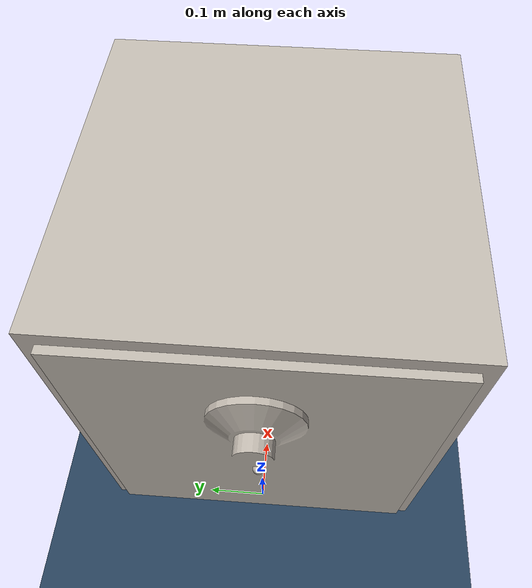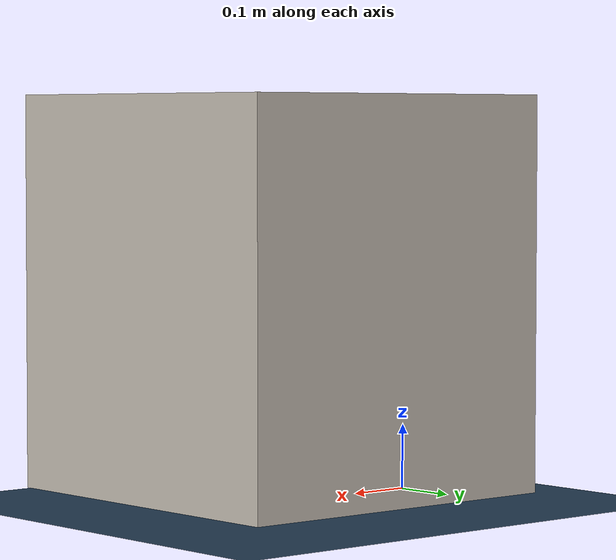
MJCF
<mujoco model="fridge">
  <compiler angle="radian" meshdir="texture_stl/"/>

  <visual>
    <headlight diffuse="0.6 0.6 0.6" ambient="0.3 0.3 0.3" specular="0 0 0"/>
    <rgba haze="0.15 0.25 0.35 1"/>
    <global azimuth="-20" elevation="-20" ellipsoidinertia="true"/>
  </visual>

  <asset>
    <texture type="skybox" builtin="gradient" rgb1="0.3 0.5 0.7" rgb2="0 0 0" width="512" height="3072"/>
    <texture type="2d" name="groundplane" builtin="checker" mark="edge" rgb1="0.2 0.3 0.4" rgb2="0.1 0.2 0.3"
      markrgb="0.8 0.8 0.8" width="300" height="300"/>
    <texture name="door_texture" type="cube" file="texture_stl/texture_0.png"/>
    <texture name="handle_texture" type="2d" file="texture_stl/texture_0.png"/>
    <material name="door_material" texture="door_texture"/>
    <material name="handle_material" texture="handle_texture"/>
    <material name="groundplane" texture="groundplane" texuniform="true" texrepeat="5 5" reflectance="0.2"/>

    <mesh name="frame" file="frame.stl" scale="0.25 0.25 0.25"/>
    <mesh name="board" file="board.stl" scale="0.25 0.25 0.25"/>
    <mesh name="9961229" file="9961229.stl" scale="0.1 0.1 0.1"/>
  </asset>

  <worldbody>
    <light pos="0 0 1.5" dir="0 0 -1" directional="true"/>
    <geom name="floor" size="0 0 0.05" type="plane" material="groundplane"/>
    <body name="door" euler="0 1.57 0" pos="0 0 0.25">
      <joint type="free"/>
      <geom name="frame" pos="0 0 0" quat="0.5 0.5 -0.5 -0.5" type="mesh" mesh="frame" material="door_material"/>
      <body name="link_1" pos="0 0.24938794880209883 0" quat="0.5 0.5 -0.5 -0.5">
        <inertial pos="0 0 0" mass="100.0" diaginertia="5.0 5.0 5.0"/>
        <joint name="joint_1" pos="0 0 0" axis="0 0 -1" range="0 1.50796"/>
        <geom name="board" pos="0.24938794880209883 0 0" quat="1 0 0 0" type="mesh" mesh="board" material="door_material"/>
        <body name="link_2" pos="0.24938794880209883 0 0.02924961288422984">
          <joint name="joint_2" pos="0 0 0" axis="0 1 0" range="-1.50796 1.50796" stiffness="2.0" damping="0.1"/>
          <geom name="handle" type="mesh" mesh="9961229" material="handle_material"/>
        </body>
      </body>
    </body>
  </worldbody>
</mujoco>
